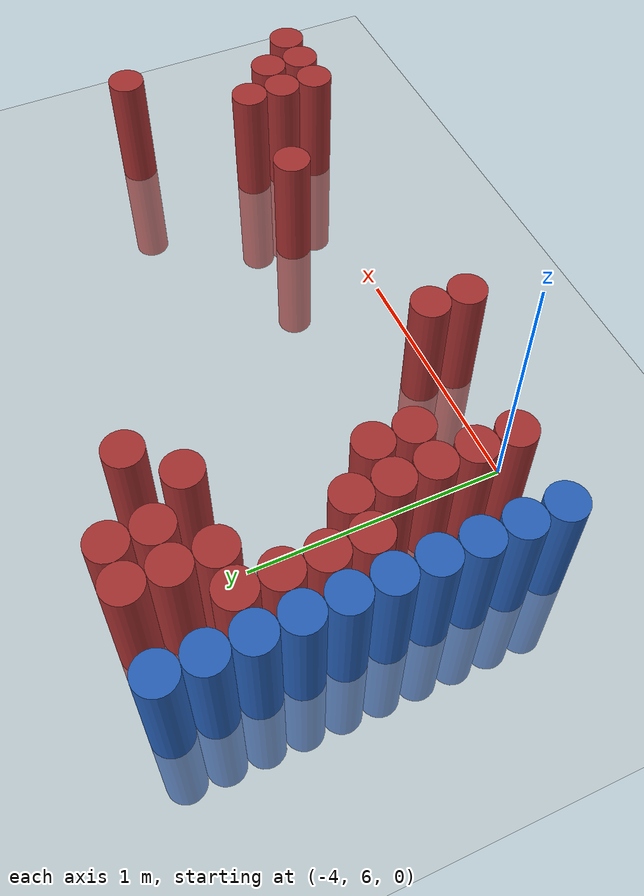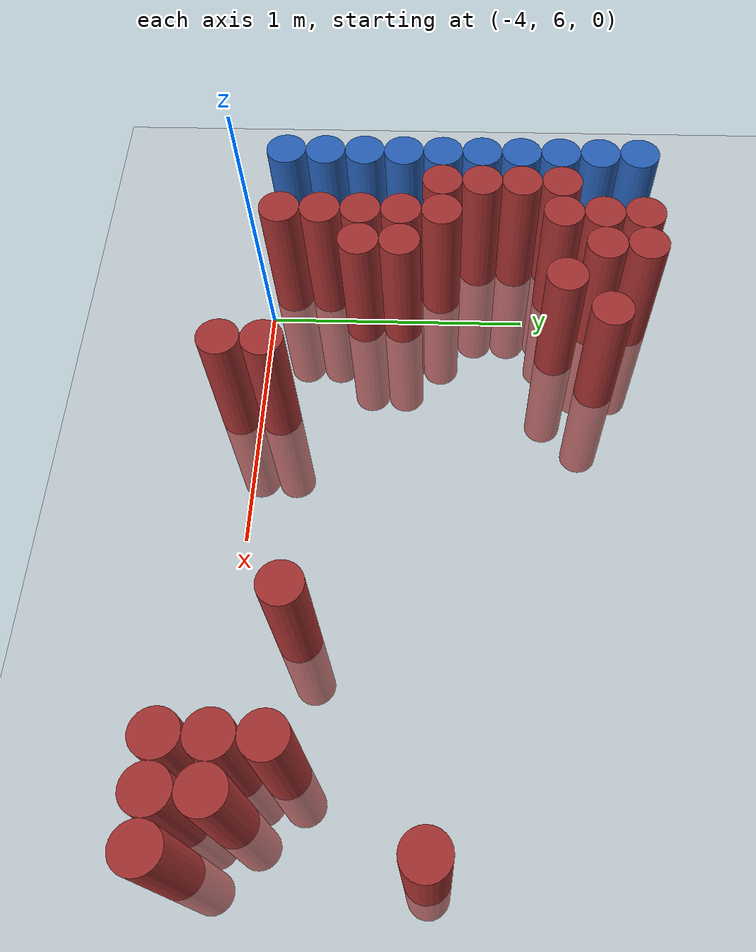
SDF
<sdf version="1.6">
 <world name="default">
  <model name="ground_plane">
   <static>1</static>
   <link name="link">
    <collision name="collision">
     <geometry><plane><normal>0 0 1</normal><size>100 100</size></plane></geometry>
     <surface><friction><ode><mu>100</mu><mu2>50</mu2></ode></friction></surface>
    </collision>
    <visual name="visual">
     <cast_shadows>0</cast_shadows>
     <geometry><plane><normal>0 0 1</normal><size>100 100</size></plane></geometry>
     <material>
      <script><uri>file://media/materials/scripts/gazebo.material</uri><name>Gazebo/Grey</name></script>
     </material>
    </visual>
   </link>
  </model>
  <model name="unit_cylinder_102">
   <static>1</static>
   <pose>-4.425000 6.075000 0.000000 0.000000 0.000000 0.000000</pose>
   <link name="link">
    <inertial>
     <mass>1</mass>
     <inertia><ixx>0.145833</ixx><ixy>0</ixy><ixz>0</ixz><iyy>0.145833</iyy><iyz>0</iyz><izz>0.125</izz></inertia>
    </inertial>
    <collision name="collision">
     <geometry><cylinder><radius>0.075000</radius><length>1</length></cylinder></geometry>
    </collision>
    <visual name="visual">
     <geometry><cylinder><radius>0.075000</radius><length>1</length></cylinder></geometry>
     <material>
      <ambient>0.152000 0.379000 0.720000 1</ambient>
      <diffuse>0.152000 0.379000 0.720000 1</diffuse>
     </material>
     <material>
      <script><name>Gazebo/Grey</name><uri>file://media/materials/scripts/gazebo.material</uri></script>
     </material>
    </visual>
    <sensor name="sensor_contact" type="contact"><contact><collision>collision</collision></contact></sensor>
   </link>
   <plugin filename="gz-sim-touchplugin-system" name="gz::sim::systems::TouchPlugin">
    <target>robot</target>
    <namespace>robot</namespace>
    <time>0.001</time>
    <enabled>true</enabled>
   </plugin>
  </model>
  <model name="unit_cylinder_103">
   <static>1</static>
   <pose>-4.425000 6.225000 0.000000 0.000000 0.000000 0.000000</pose>
   <link name="link">
    <inertial>
     <mass>1</mass>
     <inertia><ixx>0.145833</ixx><ixy>0</ixy><ixz>0</ixz><iyy>0.145833</iyy><iyz>0</iyz><izz>0.125</izz></inertia>
    </inertial>
    <collision name="collision">
     <geometry><cylinder><radius>0.075000</radius><length>1</length></cylinder></geometry>
    </collision>
    <visual name="visual">
     <geometry><cylinder><radius>0.075000</radius><length>1</length></cylinder></geometry>
     <material>
      <ambient>0.152000 0.379000 0.720000 1</ambient>
      <diffuse>0.152000 0.379000 0.720000 1</diffuse>
     </material>
     <material>
      <script><name>Gazebo/Grey</name><uri>file://media/materials/scripts/gazebo.material</uri></script>
     </material>
    </visual>
    <sensor name="sensor_contact" type="contact"><contact><collision>collision</collision></contact></sensor>
   </link>
   <plugin filename="gz-sim-touchplugin-system" name="gz::sim::systems::TouchPlugin">
    <target>robot</target>
    <namespace>robot</namespace>
    <time>0.001</time>
    <enabled>true</enabled>
   </plugin>
  </model>
  <model name="unit_cylinder_104">
   <static>1</static>
   <pose>-4.425000 6.375000 0.000000 0.000000 0.000000 0.000000</pose>
   <link name="link">
    <inertial>
     <mass>1</mass>
     <inertia><ixx>0.145833</ixx><ixy>0</ixy><ixz>0</ixz><iyy>0.145833</iyy><iyz>0</iyz><izz>0.125</izz></inertia>
    </inertial>
    <collision name="collision">
     <geometry><cylinder><radius>0.075000</radius><length>1</length></cylinder></geometry>
    </collision>
    <visual name="visual">
     <geometry><cylinder><radius>0.075000</radius><length>1</length></cylinder></geometry>
     <material>
      <ambient>0.152000 0.379000 0.720000 1</ambient>
      <diffuse>0.152000 0.379000 0.720000 1</diffuse>
     </material>
     <material>
      <script><name>Gazebo/Grey</name><uri>file://media/materials/scripts/gazebo.material</uri></script>
     </material>
    </visual>
    <sensor name="sensor_contact" type="contact"><contact><collision>collision</collision></contact></sensor>
   </link>
   <plugin filename="gz-sim-touchplugin-system" name="gz::sim::systems::TouchPlugin">
    <target>robot</target>
    <namespace>robot</namespace>
    <time>0.001</time>
    <enabled>true</enabled>
   </plugin>
  </model>
  <model name="unit_cylinder_105">
   <static>1</static>
   <pose>-4.425000 6.525000 0.000000 0.000000 0.000000 0.000000</pose>
   <link name="link">
    <inertial>
     <mass>1</mass>
     <inertia><ixx>0.145833</ixx><ixy>0</ixy><ixz>0</ixz><iyy>0.145833</iyy><iyz>0</iyz><izz>0.125</izz></inertia>
    </inertial>
    <collision name="collision">
     <geometry><cylinder><radius>0.075000</radius><length>1</length></cylinder></geometry>
    </collision>
    <visual name="visual">
     <geometry><cylinder><radius>0.075000</radius><length>1</length></cylinder></geometry>
     <material>
      <ambient>0.152000 0.379000 0.720000 1</ambient>
      <diffuse>0.152000 0.379000 0.720000 1</diffuse>
     </material>
     <material>
      <script><name>Gazebo/Grey</name><uri>file://media/materials/scripts/gazebo.material</uri></script>
     </material>
    </visual>
    <sensor name="sensor_contact" type="contact"><contact><collision>collision</collision></contact></sensor>
   </link>
   <plugin filename="gz-sim-touchplugin-system" name="gz::sim::systems::TouchPlugin">
    <target>robot</target>
    <namespace>robot</namespace>
    <time>0.001</time>
    <enabled>true</enabled>
   </plugin>
  </model>
  <model name="unit_cylinder_106">
   <static>1</static>
   <pose>-4.425000 6.675000 0.000000 0.000000 0.000000 0.000000</pose>
   <link name="link">
    <inertial>
     <mass>1</mass>
     <inertia><ixx>0.145833</ixx><ixy>0</ixy><ixz>0</ixz><iyy>0.145833</iyy><iyz>0</iyz><izz>0.125</izz></inertia>
    </inertial>
    <collision name="collision">
     <geometry><cylinder><radius>0.075000</radius><length>1</length></cylinder></geometry>
    </collision>
    <visual name="visual">
     <geometry><cylinder><radius>0.075000</radius><length>1</length></cylinder></geometry>
     <material>
      <ambient>0.152000 0.379000 0.720000 1</ambient>
      <diffuse>0.152000 0.379000 0.720000 1</diffuse>
     </material>
     <material>
      <script><name>Gazebo/Grey</name><uri>file://media/materials/scripts/gazebo.material</uri></script>
     </material>
    </visual>
    <sensor name="sensor_contact" type="contact"><contact><collision>collision</collision></contact></sensor>
   </link>
   <plugin filename="gz-sim-touchplugin-system" name="gz::sim::systems::TouchPlugin">
    <target>robot</target>
    <namespace>robot</namespace>
    <time>0.001</time>
    <enabled>true</enabled>
   </plugin>
  </model>
  <model name="unit_cylinder_107">
   <static>1</static>
   <pose>-4.425000 6.825000 0.000000 0.000000 0.000000 0.000000</pose>
   <link name="link">
    <inertial>
     <mass>1</mass>
     <inertia><ixx>0.145833</ixx><ixy>0</ixy><ixz>0</ixz><iyy>0.145833</iyy><iyz>0</iyz><izz>0.125</izz></inertia>
    </inertial>
    <collision name="collision">
     <geometry><cylinder><radius>0.075000</radius><length>1</length></cylinder></geometry>
    </collision>
    <visual name="visual">
     <geometry><cylinder><radius>0.075000</radius><length>1</length></cylinder></geometry>
     <material>
      <ambient>0.152000 0.379000 0.720000 1</ambient>
      <diffuse>0.152000 0.379000 0.720000 1</diffuse>
     </material>
     <material>
      <script><name>Gazebo/Grey</name><uri>file://media/materials/scripts/gazebo.material</uri></script>
     </material>
    </visual>
    <sensor name="sensor_contact" type="contact"><contact><collision>collision</collision></contact></sensor>
   </link>
   <plugin filename="gz-sim-touchplugin-system" name="gz::sim::systems::TouchPlugin">
    <target>robot</target>
    <namespace>robot</namespace>
    <time>0.001</time>
    <enabled>true</enabled>
   </plugin>
  </model>
  <model name="unit_cylinder_108">
   <static>1</static>
   <pose>-4.425000 6.975000 0.000000 0.000000 0.000000 0.000000</pose>
   <link name="link">
    <inertial>
     <mass>1</mass>
     <inertia><ixx>0.145833</ixx><ixy>0</ixy><ixz>0</ixz><iyy>0.145833</iyy><iyz>0</iyz><izz>0.125</izz></inertia>
    </inertial>
    <collision name="collision">
     <geometry><cylinder><radius>0.075000</radius><length>1</length></cylinder></geometry>
    </collision>
    <visual name="visual">
     <geometry><cylinder><radius>0.075000</radius><length>1</length></cylinder></geometry>
     <material>
      <ambient>0.152000 0.379000 0.720000 1</ambient>
      <diffuse>0.152000 0.379000 0.720000 1</diffuse>
     </material>
     <material>
      <script><name>Gazebo/Grey</name><uri>file://media/materials/scripts/gazebo.material</uri></script>
     </material>
    </visual>
    <sensor name="sensor_contact" type="contact"><contact><collision>collision</collision></contact></sensor>
   </link>
   <plugin filename="gz-sim-touchplugin-system" name="gz::sim::systems::TouchPlugin">
    <target>robot</target>
    <namespace>robot</namespace>
    <time>0.001</time>
    <enabled>true</enabled>
   </plugin>
  </model>
  <model name="unit_cylinder_109">
   <static>1</static>
   <pose>-4.425000 7.125000 0.000000 0.000000 0.000000 0.000000</pose>
   <link name="link">
    <inertial>
     <mass>1</mass>
     <inertia><ixx>0.145833</ixx><ixy>0</ixy><ixz>0</ixz><iyy>0.145833</iyy><iyz>0</iyz><izz>0.125</izz></inertia>
    </inertial>
    <collision name="collision">
     <geometry><cylinder><radius>0.075000</radius><length>1</length></cylinder></geometry>
    </collision>
    <visual name="visual">
     <geometry><cylinder><radius>0.075000</radius><length>1</length></cylinder></geometry>
     <material>
      <ambient>0.152000 0.379000 0.720000 1</ambient>
      <diffuse>0.152000 0.379000 0.720000 1</diffuse>
     </material>
     <material>
      <script><name>Gazebo/Grey</name><uri>file://media/materials/scripts/gazebo.material</uri></script>
     </material>
    </visual>
    <sensor name="sensor_contact" type="contact"><contact><collision>collision</collision></contact></sensor>
   </link>
   <plugin filename="gz-sim-touchplugin-system" name="gz::sim::systems::TouchPlugin">
    <target>robot</target>
    <namespace>robot</namespace>
    <time>0.001</time>
    <enabled>true</enabled>
   </plugin>
  </model>
  <model name="unit_cylinder_110">
   <static>1</static>
   <pose>-4.425000 7.275000 0.000000 0.000000 0.000000 0.000000</pose>
   <link name="link">
    <inertial>
     <mass>1</mass>
     <inertia><ixx>0.145833</ixx><ixy>0</ixy><ixz>0</ixz><iyy>0.145833</iyy><iyz>0</iyz><izz>0.125</izz></inertia>
    </inertial>
    <collision name="collision">
     <geometry><cylinder><radius>0.075000</radius><length>1</length></cylinder></geometry>
    </collision>
    <visual name="visual">
     <geometry><cylinder><radius>0.075000</radius><length>1</length></cylinder></geometry>
     <material>
      <ambient>0.152000 0.379000 0.720000 1</ambient>
      <diffuse>0.152000 0.379000 0.720000 1</diffuse>
     </material>
     <material>
      <script><name>Gazebo/Grey</name><uri>file://media/materials/scripts/gazebo.material</uri></script>
     </material>
    </visual>
    <sensor name="sensor_contact" type="contact"><contact><collision>collision</collision></contact></sensor>
   </link>
   <plugin filename="gz-sim-touchplugin-system" name="gz::sim::systems::TouchPlugin">
    <target>robot</target>
    <namespace>robot</namespace>
    <time>0.001</time>
    <enabled>true</enabled>
   </plugin>
  </model>
  <model name="unit_cylinder_111">
   <static>1</static>
   <pose>-4.425000 7.425000 0.000000 0.000000 0.000000 0.000000</pose>
   <link name="link">
    <inertial>
     <mass>1</mass>
     <inertia><ixx>0.145833</ixx><ixy>0</ixy><ixz>0</ixz><iyy>0.145833</iyy><iyz>0</iyz><izz>0.125</izz></inertia>
    </inertial>
    <collision name="collision">
     <geometry><cylinder><radius>0.075000</radius><length>1</length></cylinder></geometry>
    </collision>
    <visual name="visual">
     <geometry><cylinder><radius>0.075000</radius><length>1</length></cylinder></geometry>
     <material>
      <ambient>0.152000 0.379000 0.720000 1</ambient>
      <diffuse>0.152000 0.379000 0.720000 1</diffuse>
     </material>
     <material>
      <script><name>Gazebo/Grey</name><uri>file://media/materials/scripts/gazebo.material</uri></script>
     </material>
    </visual>
    <sensor name="sensor_contact" type="contact"><contact><collision>collision</collision></contact></sensor>
   </link>
   <plugin filename="gz-sim-touchplugin-system" name="gz::sim::systems::TouchPlugin">
    <target>robot</target>
    <namespace>robot</namespace>
    <time>0.001</time>
    <enabled>true</enabled>
   </plugin>
  </model>
  <model name="unit_cylinder_127">
   <static>1</static>
   <pose>-4.275000 6.675000 0.000000 0.000000 0.000000 0.000000</pose>
   <link name="link">
    <inertial>
     <mass>1</mass>
     <inertia><ixx>0.145833</ixx><ixy>0</ixy><ixz>0</ixz><iyy>0.145833</iyy><iyz>0</iyz><izz>0.125</izz></inertia>
    </inertial>
    <collision name="collision">
     <geometry><cylinder><radius>0.075000</radius><length>1</length></cylinder></geometry>
    </collision>
    <visual name="visual">
     <geometry><cylinder><radius>0.075000</radius><length>1</length></cylinder></geometry>
     <material>
      <ambient>0.648000 0.192000 0.192000 1</ambient>
      <diffuse>0.648000 0.192000 0.192000 1</diffuse>
     </material>
     <material>
      <script><name>Gazebo/Grey</name><uri>file://media/materials/scripts/gazebo.material</uri></script>
     </material>
    </visual>
    <sensor name="sensor_contact" type="contact"><contact><collision>collision</collision></contact></sensor>
   </link>
   <plugin filename="gz-sim-touchplugin-system" name="gz::sim::systems::TouchPlugin">
    <target>robot</target>
    <namespace>robot</namespace>
    <time>0.001</time>
    <enabled>true</enabled>
   </plugin>
  </model>
  <model name="unit_cylinder_128">
   <static>1</static>
   <pose>-4.275000 6.825000 0.000000 0.000000 0.000000 0.000000</pose>
   <link name="link">
    <inertial>
     <mass>1</mass>
     <inertia><ixx>0.145833</ixx><ixy>0</ixy><ixz>0</ixz><iyy>0.145833</iyy><iyz>0</iyz><izz>0.125</izz></inertia>
    </inertial>
    <collision name="collision">
     <geometry><cylinder><radius>0.075000</radius><length>1</length></cylinder></geometry>
    </collision>
    <visual name="visual">
     <geometry><cylinder><radius>0.075000</radius><length>1</length></cylinder></geometry>
     <material>
      <ambient>0.648000 0.192000 0.192000 1</ambient>
      <diffuse>0.648000 0.192000 0.192000 1</diffuse>
     </material>
     <material>
      <script><name>Gazebo/Grey</name><uri>file://media/materials/scripts/gazebo.material</uri></script>
     </material>
    </visual>
    <sensor name="sensor_contact" type="contact"><contact><collision>collision</collision></contact></sensor>
   </link>
   <plugin filename="gz-sim-touchplugin-system" name="gz::sim::systems::TouchPlugin">
    <target>robot</target>
    <namespace>robot</namespace>
    <time>0.001</time>
    <enabled>true</enabled>
   </plugin>
  </model>
  <model name="unit_cylinder_129">
   <static>1</static>
   <pose>-4.275000 6.975000 0.000000 0.000000 0.000000 0.000000</pose>
   <link name="link">
    <inertial>
     <mass>1</mass>
     <inertia><ixx>0.145833</ixx><ixy>0</ixy><ixz>0</ixz><iyy>0.145833</iyy><iyz>0</iyz><izz>0.125</izz></inertia>
    </inertial>
    <collision name="collision">
     <geometry><cylinder><radius>0.075000</radius><length>1</length></cylinder></geometry>
    </collision>
    <visual name="visual">
     <geometry><cylinder><radius>0.075000</radius><length>1</length></cylinder></geometry>
     <material>
      <ambient>0.648000 0.192000 0.192000 1</ambient>
      <diffuse>0.648000 0.192000 0.192000 1</diffuse>
     </material>
     <material>
      <script><name>Gazebo/Grey</name><uri>file://media/materials/scripts/gazebo.material</uri></script>
     </material>
    </visual>
    <sensor name="sensor_contact" type="contact"><contact><collision>collision</collision></contact></sensor>
   </link>
   <plugin filename="gz-sim-touchplugin-system" name="gz::sim::systems::TouchPlugin">
    <target>robot</target>
    <namespace>robot</namespace>
    <time>0.001</time>
    <enabled>true</enabled>
   </plugin>
  </model>
  <model name="unit_cylinder_130">
   <static>1</static>
   <pose>-4.275000 7.125000 0.000000 0.000000 0.000000 0.000000</pose>
   <link name="link">
    <inertial>
     <mass>1</mass>
     <inertia><ixx>0.145833</ixx><ixy>0</ixy><ixz>0</ixz><iyy>0.145833</iyy><iyz>0</iyz><izz>0.125</izz></inertia>
    </inertial>
    <collision name="collision">
     <geometry><cylinder><radius>0.075000</radius><length>1</length></cylinder></geometry>
    </collision>
    <visual name="visual">
     <geometry><cylinder><radius>0.075000</radius><length>1</length></cylinder></geometry>
     <material>
      <ambient>0.648000 0.192000 0.192000 1</ambient>
      <diffuse>0.648000 0.192000 0.192000 1</diffuse>
     </material>
     <material>
      <script><name>Gazebo/Grey</name><uri>file://media/materials/scripts/gazebo.material</uri></script>
     </material>
    </visual>
    <sensor name="sensor_contact" type="contact"><contact><collision>collision</collision></contact></sensor>
   </link>
   <plugin filename="gz-sim-touchplugin-system" name="gz::sim::systems::TouchPlugin">
    <target>robot</target>
    <namespace>robot</namespace>
    <time>0.001</time>
    <enabled>true</enabled>
   </plugin>
  </model>
  <model name="unit_cylinder_141">
   <static>1</static>
   <pose>-4.125000 6.075000 0.000000 0.000000 0.000000 0.000000</pose>
   <link name="link">
    <inertial>
     <mass>1</mass>
     <inertia><ixx>0.145833</ixx><ixy>0</ixy><ixz>0</ixz><iyy>0.145833</iyy><iyz>0</iyz><izz>0.125</izz></inertia>
    </inertial>
    <collision name="collision">
     <geometry><cylinder><radius>0.075000</radius><length>1</length></cylinder></geometry>
    </collision>
    <visual name="visual">
     <geometry><cylinder><radius>0.075000</radius><length>1</length></cylinder></geometry>
     <material>
      <ambient>0.648000 0.192000 0.192000 1</ambient>
      <diffuse>0.648000 0.192000 0.192000 1</diffuse>
     </material>
     <material>
      <script><name>Gazebo/Grey</name><uri>file://media/materials/scripts/gazebo.material</uri></script>
     </material>
    </visual>
    <sensor name="sensor_contact" type="contact"><contact><collision>collision</collision></contact></sensor>
   </link>
   <plugin filename="gz-sim-touchplugin-system" name="gz::sim::systems::TouchPlugin">
    <target>robot</target>
    <namespace>robot</namespace>
    <time>0.001</time>
    <enabled>true</enabled>
   </plugin>
  </model>
  <model name="unit_cylinder_142">
   <static>1</static>
   <pose>-4.125000 6.225000 0.000000 0.000000 0.000000 0.000000</pose>
   <link name="link">
    <inertial>
     <mass>1</mass>
     <inertia><ixx>0.145833</ixx><ixy>0</ixy><ixz>0</ixz><iyy>0.145833</iyy><iyz>0</iyz><izz>0.125</izz></inertia>
    </inertial>
    <collision name="collision">
     <geometry><cylinder><radius>0.075000</radius><length>1</length></cylinder></geometry>
    </collision>
    <visual name="visual">
     <geometry><cylinder><radius>0.075000</radius><length>1</length></cylinder></geometry>
     <material>
      <ambient>0.648000 0.192000 0.192000 1</ambient>
      <diffuse>0.648000 0.192000 0.192000 1</diffuse>
     </material>
     <material>
      <script><name>Gazebo/Grey</name><uri>file://media/materials/scripts/gazebo.material</uri></script>
     </material>
    </visual>
    <sensor name="sensor_contact" type="contact"><contact><collision>collision</collision></contact></sensor>
   </link>
   <plugin filename="gz-sim-touchplugin-system" name="gz::sim::systems::TouchPlugin">
    <target>robot</target>
    <namespace>robot</namespace>
    <time>0.001</time>
    <enabled>true</enabled>
   </plugin>
  </model>
  <model name="unit_cylinder_143">
   <static>1</static>
   <pose>-4.125000 6.375000 0.000000 0.000000 0.000000 0.000000</pose>
   <link name="link">
    <inertial>
     <mass>1</mass>
     <inertia><ixx>0.145833</ixx><ixy>0</ixy><ixz>0</ixz><iyy>0.145833</iyy><iyz>0</iyz><izz>0.125</izz></inertia>
    </inertial>
    <collision name="collision">
     <geometry><cylinder><radius>0.075000</radius><length>1</length></cylinder></geometry>
    </collision>
    <visual name="visual">
     <geometry><cylinder><radius>0.075000</radius><length>1</length></cylinder></geometry>
     <material>
      <ambient>0.648000 0.192000 0.192000 1</ambient>
      <diffuse>0.648000 0.192000 0.192000 1</diffuse>
     </material>
     <material>
      <script><name>Gazebo/Grey</name><uri>file://media/materials/scripts/gazebo.material</uri></script>
     </material>
    </visual>
    <sensor name="sensor_contact" type="contact"><contact><collision>collision</collision></contact></sensor>
   </link>
   <plugin filename="gz-sim-touchplugin-system" name="gz::sim::systems::TouchPlugin">
    <target>robot</target>
    <namespace>robot</namespace>
    <time>0.001</time>
    <enabled>true</enabled>
   </plugin>
  </model>
  <model name="unit_cylinder_144">
   <static>1</static>
   <pose>-4.125000 6.525000 0.000000 0.000000 0.000000 0.000000</pose>
   <link name="link">
    <inertial>
     <mass>1</mass>
     <inertia><ixx>0.145833</ixx><ixy>0</ixy><ixz>0</ixz><iyy>0.145833</iyy><iyz>0</iyz><izz>0.125</izz></inertia>
    </inertial>
    <collision name="collision">
     <geometry><cylinder><radius>0.075000</radius><length>1</length></cylinder></geometry>
    </collision>
    <visual name="visual">
     <geometry><cylinder><radius>0.075000</radius><length>1</length></cylinder></geometry>
     <material>
      <ambient>0.648000 0.192000 0.192000 1</ambient>
      <diffuse>0.648000 0.192000 0.192000 1</diffuse>
     </material>
     <material>
      <script><name>Gazebo/Grey</name><uri>file://media/materials/scripts/gazebo.material</uri></script>
     </material>
    </visual>
    <sensor name="sensor_contact" type="contact"><contact><collision>collision</collision></contact></sensor>
   </link>
   <plugin filename="gz-sim-touchplugin-system" name="gz::sim::systems::TouchPlugin">
    <target>robot</target>
    <namespace>robot</namespace>
    <time>0.001</time>
    <enabled>true</enabled>
   </plugin>
  </model>
  <model name="unit_cylinder_145">
   <static>1</static>
   <pose>-4.125000 6.675000 0.000000 0.000000 0.000000 0.000000</pose>
   <link name="link">
    <inertial>
     <mass>1</mass>
     <inertia><ixx>0.145833</ixx><ixy>0</ixy><ixz>0</ixz><iyy>0.145833</iyy><iyz>0</iyz><izz>0.125</izz></inertia>
    </inertial>
    <collision name="collision">
     <geometry><cylinder><radius>0.075000</radius><length>1</length></cylinder></geometry>
    </collision>
    <visual name="visual">
     <geometry><cylinder><radius>0.075000</radius><length>1</length></cylinder></geometry>
     <material>
      <ambient>0.648000 0.192000 0.192000 1</ambient>
      <diffuse>0.648000 0.192000 0.192000 1</diffuse>
     </material>
     <material>
      <script><name>Gazebo/Grey</name><uri>file://media/materials/scripts/gazebo.material</uri></script>
     </material>
    </visual>
    <sensor name="sensor_contact" type="contact"><contact><collision>collision</collision></contact></sensor>
   </link>
   <plugin filename="gz-sim-touchplugin-system" name="gz::sim::systems::TouchPlugin">
    <target>robot</target>
    <namespace>robot</namespace>
    <time>0.001</time>
    <enabled>true</enabled>
   </plugin>
  </model>
  <model name="unit_cylinder_146">
   <static>1</static>
   <pose>-4.125000 7.125000 0.000000 0.000000 0.000000 0.000000</pose>
   <link name="link">
    <inertial>
     <mass>1</mass>
     <inertia><ixx>0.145833</ixx><ixy>0</ixy><ixz>0</ixz><iyy>0.145833</iyy><iyz>0</iyz><izz>0.125</izz></inertia>
    </inertial>
    <collision name="collision">
     <geometry><cylinder><radius>0.075000</radius><length>1</length></cylinder></geometry>
    </collision>
    <visual name="visual">
     <geometry><cylinder><radius>0.075000</radius><length>1</length></cylinder></geometry>
     <material>
      <ambient>0.648000 0.192000 0.192000 1</ambient>
      <diffuse>0.648000 0.192000 0.192000 1</diffuse>
     </material>
     <material>
      <script><name>Gazebo/Grey</name><uri>file://media/materials/scripts/gazebo.material</uri></script>
     </material>
    </visual>
    <sensor name="sensor_contact" type="contact"><contact><collision>collision</collision></contact></sensor>
   </link>
   <plugin filename="gz-sim-touchplugin-system" name="gz::sim::systems::TouchPlugin">
    <target>robot</target>
    <namespace>robot</namespace>
    <time>0.001</time>
    <enabled>true</enabled>
   </plugin>
  </model>
  <model name="unit_cylinder_147">
   <static>1</static>
   <pose>-4.125000 7.275000 0.000000 0.000000 0.000000 0.000000</pose>
   <link name="link">
    <inertial>
     <mass>1</mass>
     <inertia><ixx>0.145833</ixx><ixy>0</ixy><ixz>0</ixz><iyy>0.145833</iyy><iyz>0</iyz><izz>0.125</izz></inertia>
    </inertial>
    <collision name="collision">
     <geometry><cylinder><radius>0.075000</radius><length>1</length></cylinder></geometry>
    </collision>
    <visual name="visual">
     <geometry><cylinder><radius>0.075000</radius><length>1</length></cylinder></geometry>
     <material>
      <ambient>0.648000 0.192000 0.192000 1</ambient>
      <diffuse>0.648000 0.192000 0.192000 1</diffuse>
     </material>
     <material>
      <script><name>Gazebo/Grey</name><uri>file://media/materials/scripts/gazebo.material</uri></script>
     </material>
    </visual>
    <sensor name="sensor_contact" type="contact"><contact><collision>collision</collision></contact></sensor>
   </link>
   <plugin filename="gz-sim-touchplugin-system" name="gz::sim::systems::TouchPlugin">
    <target>robot</target>
    <namespace>robot</namespace>
    <time>0.001</time>
    <enabled>true</enabled>
   </plugin>
  </model>
  <model name="unit_cylinder_148">
   <static>1</static>
   <pose>-4.125000 7.425000 0.000000 0.000000 0.000000 0.000000</pose>
   <link name="link">
    <inertial>
     <mass>1</mass>
     <inertia><ixx>0.145833</ixx><ixy>0</ixy><ixz>0</ixz><iyy>0.145833</iyy><iyz>0</iyz><izz>0.125</izz></inertia>
    </inertial>
    <collision name="collision">
     <geometry><cylinder><radius>0.075000</radius><length>1</length></cylinder></geometry>
    </collision>
    <visual name="visual">
     <geometry><cylinder><radius>0.075000</radius><length>1</length></cylinder></geometry>
     <material>
      <ambient>0.648000 0.192000 0.192000 1</ambient>
      <diffuse>0.648000 0.192000 0.192000 1</diffuse>
     </material>
     <material>
      <script><name>Gazebo/Grey</name><uri>file://media/materials/scripts/gazebo.material</uri></script>
     </material>
    </visual>
    <sensor name="sensor_contact" type="contact"><contact><collision>collision</collision></contact></sensor>
   </link>
   <plugin filename="gz-sim-touchplugin-system" name="gz::sim::systems::TouchPlugin">
    <target>robot</target>
    <namespace>robot</namespace>
    <time>0.001</time>
    <enabled>true</enabled>
   </plugin>
  </model>
  <model name="unit_cylinder_156">
   <static>1</static>
   <pose>-3.975000 6.375000 0.000000 0.000000 0.000000 0.000000</pose>
   <link name="link">
    <inertial>
     <mass>1</mass>
     <inertia><ixx>0.145833</ixx><ixy>0</ixy><ixz>0</ixz><iyy>0.145833</iyy><iyz>0</iyz><izz>0.125</izz></inertia>
    </inertial>
    <collision name="collision">
     <geometry><cylinder><radius>0.075000</radius><length>1</length></cylinder></geometry>
    </collision>
    <visual name="visual">
     <geometry><cylinder><radius>0.075000</radius><length>1</length></cylinder></geometry>
     <material>
      <ambient>0.648000 0.192000 0.192000 1</ambient>
      <diffuse>0.648000 0.192000 0.192000 1</diffuse>
     </material>
     <material>
      <script><name>Gazebo/Grey</name><uri>file://media/materials/scripts/gazebo.material</uri></script>
     </material>
    </visual>
    <sensor name="sensor_contact" type="contact"><contact><collision>collision</collision></contact></sensor>
   </link>
   <plugin filename="gz-sim-touchplugin-system" name="gz::sim::systems::TouchPlugin">
    <target>robot</target>
    <namespace>robot</namespace>
    <time>0.001</time>
    <enabled>true</enabled>
   </plugin>
  </model>
  <model name="unit_cylinder_157">
   <static>1</static>
   <pose>-3.975000 6.525000 0.000000 0.000000 0.000000 0.000000</pose>
   <link name="link">
    <inertial>
     <mass>1</mass>
     <inertia><ixx>0.145833</ixx><ixy>0</ixy><ixz>0</ixz><iyy>0.145833</iyy><iyz>0</iyz><izz>0.125</izz></inertia>
    </inertial>
    <collision name="collision">
     <geometry><cylinder><radius>0.075000</radius><length>1</length></cylinder></geometry>
    </collision>
    <visual name="visual">
     <geometry><cylinder><radius>0.075000</radius><length>1</length></cylinder></geometry>
     <material>
      <ambient>0.648000 0.192000 0.192000 1</ambient>
      <diffuse>0.648000 0.192000 0.192000 1</diffuse>
     </material>
     <material>
      <script><name>Gazebo/Grey</name><uri>file://media/materials/scripts/gazebo.material</uri></script>
     </material>
    </visual>
    <sensor name="sensor_contact" type="contact"><contact><collision>collision</collision></contact></sensor>
   </link>
   <plugin filename="gz-sim-touchplugin-system" name="gz::sim::systems::TouchPlugin">
    <target>robot</target>
    <namespace>robot</namespace>
    <time>0.001</time>
    <enabled>true</enabled>
   </plugin>
  </model>
  <model name="unit_cylinder_158">
   <static>1</static>
   <pose>-3.975000 7.275000 0.000000 0.000000 0.000000 0.000000</pose>
   <link name="link">
    <inertial>
     <mass>1</mass>
     <inertia><ixx>0.145833</ixx><ixy>0</ixy><ixz>0</ixz><iyy>0.145833</iyy><iyz>0</iyz><izz>0.125</izz></inertia>
    </inertial>
    <collision name="collision">
     <geometry><cylinder><radius>0.075000</radius><length>1</length></cylinder></geometry>
    </collision>
    <visual name="visual">
     <geometry><cylinder><radius>0.075000</radius><length>1</length></cylinder></geometry>
     <material>
      <ambient>0.648000 0.192000 0.192000 1</ambient>
      <diffuse>0.648000 0.192000 0.192000 1</diffuse>
     </material>
     <material>
      <script><name>Gazebo/Grey</name><uri>file://media/materials/scripts/gazebo.material</uri></script>
     </material>
    </visual>
    <sensor name="sensor_contact" type="contact"><contact><collision>collision</collision></contact></sensor>
   </link>
   <plugin filename="gz-sim-touchplugin-system" name="gz::sim::systems::TouchPlugin">
    <target>robot</target>
    <namespace>robot</namespace>
    <time>0.001</time>
    <enabled>true</enabled>
   </plugin>
  </model>
  <model name="unit_cylinder_159">
   <static>1</static>
   <pose>-3.975000 7.425000 0.000000 0.000000 0.000000 0.000000</pose>
   <link name="link">
    <inertial>
     <mass>1</mass>
     <inertia><ixx>0.145833</ixx><ixy>0</ixy><ixz>0</ixz><iyy>0.145833</iyy><iyz>0</iyz><izz>0.125</izz></inertia>
    </inertial>
    <collision name="collision">
     <geometry><cylinder><radius>0.075000</radius><length>1</length></cylinder></geometry>
    </collision>
    <visual name="visual">
     <geometry><cylinder><radius>0.075000</radius><length>1</length></cylinder></geometry>
     <material>
      <ambient>0.648000 0.192000 0.192000 1</ambient>
      <diffuse>0.648000 0.192000 0.192000 1</diffuse>
     </material>
     <material>
      <script><name>Gazebo/Grey</name><uri>file://media/materials/scripts/gazebo.material</uri></script>
     </material>
    </visual>
    <sensor name="sensor_contact" type="contact"><contact><collision>collision</collision></contact></sensor>
   </link>
   <plugin filename="gz-sim-touchplugin-system" name="gz::sim::systems::TouchPlugin">
    <target>robot</target>
    <namespace>robot</namespace>
    <time>0.001</time>
    <enabled>true</enabled>
   </plugin>
  </model>
  <model name="unit_cylinder_162">
   <static>1</static>
   <pose>-3.825000 7.125000 0.000000 0.000000 0.000000 0.000000</pose>
   <link name="link">
    <inertial>
     <mass>1</mass>
     <inertia><ixx>0.145833</ixx><ixy>0</ixy><ixz>0</ixz><iyy>0.145833</iyy><iyz>0</iyz><izz>0.125</izz></inertia>
    </inertial>
    <collision name="collision">
     <geometry><cylinder><radius>0.075000</radius><length>1</length></cylinder></geometry>
    </collision>
    <visual name="visual">
     <geometry><cylinder><radius>0.075000</radius><length>1</length></cylinder></geometry>
     <material>
      <ambient>0.648000 0.192000 0.192000 1</ambient>
      <diffuse>0.648000 0.192000 0.192000 1</diffuse>
     </material>
     <material>
      <script><name>Gazebo/Grey</name><uri>file://media/materials/scripts/gazebo.material</uri></script>
     </material>
    </visual>
    <sensor name="sensor_contact" type="contact"><contact><collision>collision</collision></contact></sensor>
   </link>
   <plugin filename="gz-sim-touchplugin-system" name="gz::sim::systems::TouchPlugin">
    <target>robot</target>
    <namespace>robot</namespace>
    <time>0.001</time>
    <enabled>true</enabled>
   </plugin>
  </model>
  <model name="unit_cylinder_165">
   <static>1</static>
   <pose>-3.675000 7.275000 0.000000 0.000000 0.000000 0.000000</pose>
   <link name="link">
    <inertial>
     <mass>1</mass>
     <inertia><ixx>0.145833</ixx><ixy>0</ixy><ixz>0</ixz><iyy>0.145833</iyy><iyz>0</iyz><izz>0.125</izz></inertia>
    </inertial>
    <collision name="collision">
     <geometry><cylinder><radius>0.075000</radius><length>1</length></cylinder></geometry>
    </collision>
    <visual name="visual">
     <geometry><cylinder><radius>0.075000</radius><length>1</length></cylinder></geometry>
     <material>
      <ambient>0.648000 0.192000 0.192000 1</ambient>
      <diffuse>0.648000 0.192000 0.192000 1</diffuse>
     </material>
     <material>
      <script><name>Gazebo/Grey</name><uri>file://media/materials/scripts/gazebo.material</uri></script>
     </material>
    </visual>
    <sensor name="sensor_contact" type="contact"><contact><collision>collision</collision></contact></sensor>
   </link>
   <plugin filename="gz-sim-touchplugin-system" name="gz::sim::systems::TouchPlugin">
    <target>robot</target>
    <namespace>robot</namespace>
    <time>0.001</time>
    <enabled>true</enabled>
   </plugin>
  </model>
  <model name="unit_cylinder_169">
   <static>1</static>
   <pose>-3.525000 5.925000 0.000000 0.000000 0.000000 0.000000</pose>
   <link name="link">
    <inertial>
     <mass>1</mass>
     <inertia><ixx>0.145833</ixx><ixy>0</ixy><ixz>0</ixz><iyy>0.145833</iyy><iyz>0</iyz><izz>0.125</izz></inertia>
    </inertial>
    <collision name="collision">
     <geometry><cylinder><radius>0.075000</radius><length>1</length></cylinder></geometry>
    </collision>
    <visual name="visual">
     <geometry><cylinder><radius>0.075000</radius><length>1</length></cylinder></geometry>
     <material>
      <ambient>0.648000 0.192000 0.192000 1</ambient>
      <diffuse>0.648000 0.192000 0.192000 1</diffuse>
     </material>
     <material>
      <script><name>Gazebo/Grey</name><uri>file://media/materials/scripts/gazebo.material</uri></script>
     </material>
    </visual>
    <sensor name="sensor_contact" type="contact"><contact><collision>collision</collision></contact></sensor>
   </link>
   <plugin filename="gz-sim-touchplugin-system" name="gz::sim::systems::TouchPlugin">
    <target>robot</target>
    <namespace>robot</namespace>
    <time>0.001</time>
    <enabled>true</enabled>
   </plugin>
  </model>
  <model name="unit_cylinder_170">
   <static>1</static>
   <pose>-3.525000 6.075000 0.000000 0.000000 0.000000 0.000000</pose>
   <link name="link">
    <inertial>
     <mass>1</mass>
     <inertia><ixx>0.145833</ixx><ixy>0</ixy><ixz>0</ixz><iyy>0.145833</iyy><iyz>0</iyz><izz>0.125</izz></inertia>
    </inertial>
    <collision name="collision">
     <geometry><cylinder><radius>0.075000</radius><length>1</length></cylinder></geometry>
    </collision>
    <visual name="visual">
     <geometry><cylinder><radius>0.075000</radius><length>1</length></cylinder></geometry>
     <material>
      <ambient>0.648000 0.192000 0.192000 1</ambient>
      <diffuse>0.648000 0.192000 0.192000 1</diffuse>
     </material>
     <material>
      <script><name>Gazebo/Grey</name><uri>file://media/materials/scripts/gazebo.material</uri></script>
     </material>
    </visual>
    <sensor name="sensor_contact" type="contact"><contact><collision>collision</collision></contact></sensor>
   </link>
   <plugin filename="gz-sim-touchplugin-system" name="gz::sim::systems::TouchPlugin">
    <target>robot</target>
    <namespace>robot</namespace>
    <time>0.001</time>
    <enabled>true</enabled>
   </plugin>
  </model>
  <model name="unit_cylinder_174">
   <static>1</static>
   <pose>-2.625000 6.225000 0.000000 0.000000 0.000000 0.000000</pose>
   <link name="link">
    <inertial>
     <mass>1</mass>
     <inertia><ixx>0.145833</ixx><ixy>0</ixy><ixz>0</ixz><iyy>0.145833</iyy><iyz>0</iyz><izz>0.125</izz></inertia>
    </inertial>
    <collision name="collision">
     <geometry><cylinder><radius>0.075000</radius><length>1</length></cylinder></geometry>
    </collision>
    <visual name="visual">
     <geometry><cylinder><radius>0.075000</radius><length>1</length></cylinder></geometry>
     <material>
      <ambient>0.648000 0.192000 0.192000 1</ambient>
      <diffuse>0.648000 0.192000 0.192000 1</diffuse>
     </material>
     <material>
      <script><name>Gazebo/Grey</name><uri>file://media/materials/scripts/gazebo.material</uri></script>
     </material>
    </visual>
    <sensor name="sensor_contact" type="contact"><contact><collision>collision</collision></contact></sensor>
   </link>
   <plugin filename="gz-sim-touchplugin-system" name="gz::sim::systems::TouchPlugin">
    <target>robot</target>
    <namespace>robot</namespace>
    <time>0.001</time>
    <enabled>true</enabled>
   </plugin>
  </model>
  <model name="unit_cylinder_187">
   <static>1</static>
   <pose>-2.175000 5.925000 0.000000 0.000000 0.000000 0.000000</pose>
   <link name="link">
    <inertial>
     <mass>1</mass>
     <inertia><ixx>0.145833</ixx><ixy>0</ixy><ixz>0</ixz><iyy>0.145833</iyy><iyz>0</iyz><izz>0.125</izz></inertia>
    </inertial>
    <collision name="collision">
     <geometry><cylinder><radius>0.075000</radius><length>1</length></cylinder></geometry>
    </collision>
    <visual name="visual">
     <geometry><cylinder><radius>0.075000</radius><length>1</length></cylinder></geometry>
     <material>
      <ambient>0.648000 0.192000 0.192000 1</ambient>
      <diffuse>0.648000 0.192000 0.192000 1</diffuse>
     </material>
     <material>
      <script><name>Gazebo/Grey</name><uri>file://media/materials/scripts/gazebo.material</uri></script>
     </material>
    </visual>
    <sensor name="sensor_contact" type="contact"><contact><collision>collision</collision></contact></sensor>
   </link>
   <plugin filename="gz-sim-touchplugin-system" name="gz::sim::systems::TouchPlugin">
    <target>robot</target>
    <namespace>robot</namespace>
    <time>0.001</time>
    <enabled>true</enabled>
   </plugin>
  </model>
  <model name="unit_cylinder_188">
   <static>1</static>
   <pose>-2.175000 6.075000 0.000000 0.000000 0.000000 0.000000</pose>
   <link name="link">
    <inertial>
     <mass>1</mass>
     <inertia><ixx>0.145833</ixx><ixy>0</ixy><ixz>0</ixz><iyy>0.145833</iyy><iyz>0</iyz><izz>0.125</izz></inertia>
    </inertial>
    <collision name="collision">
     <geometry><cylinder><radius>0.075000</radius><length>1</length></cylinder></geometry>
    </collision>
    <visual name="visual">
     <geometry><cylinder><radius>0.075000</radius><length>1</length></cylinder></geometry>
     <material>
      <ambient>0.648000 0.192000 0.192000 1</ambient>
      <diffuse>0.648000 0.192000 0.192000 1</diffuse>
     </material>
     <material>
      <script><name>Gazebo/Grey</name><uri>file://media/materials/scripts/gazebo.material</uri></script>
     </material>
    </visual>
    <sensor name="sensor_contact" type="contact"><contact><collision>collision</collision></contact></sensor>
   </link>
   <plugin filename="gz-sim-touchplugin-system" name="gz::sim::systems::TouchPlugin">
    <target>robot</target>
    <namespace>robot</namespace>
    <time>0.001</time>
    <enabled>true</enabled>
   </plugin>
  </model>
  <model name="unit_cylinder_189">
   <static>1</static>
   <pose>-2.175000 6.225000 0.000000 0.000000 0.000000 0.000000</pose>
   <link name="link">
    <inertial>
     <mass>1</mass>
     <inertia><ixx>0.145833</ixx><ixy>0</ixy><ixz>0</ixz><iyy>0.145833</iyy><iyz>0</iyz><izz>0.125</izz></inertia>
    </inertial>
    <collision name="collision">
     <geometry><cylinder><radius>0.075000</radius><length>1</length></cylinder></geometry>
    </collision>
    <visual name="visual">
     <geometry><cylinder><radius>0.075000</radius><length>1</length></cylinder></geometry>
     <material>
      <ambient>0.648000 0.192000 0.192000 1</ambient>
      <diffuse>0.648000 0.192000 0.192000 1</diffuse>
     </material>
     <material>
      <script><name>Gazebo/Grey</name><uri>file://media/materials/scripts/gazebo.material</uri></script>
     </material>
    </visual>
    <sensor name="sensor_contact" type="contact"><contact><collision>collision</collision></contact></sensor>
   </link>
   <plugin filename="gz-sim-touchplugin-system" name="gz::sim::systems::TouchPlugin">
    <target>robot</target>
    <namespace>robot</namespace>
    <time>0.001</time>
    <enabled>true</enabled>
   </plugin>
  </model>
  <model name="unit_cylinder_195">
   <static>1</static>
   <pose>-2.025000 5.925000 0.000000 0.000000 0.000000 0.000000</pose>
   <link name="link">
    <inertial>
     <mass>1</mass>
     <inertia><ixx>0.145833</ixx><ixy>0</ixy><ixz>0</ixz><iyy>0.145833</iyy><iyz>0</iyz><izz>0.125</izz></inertia>
    </inertial>
    <collision name="collision">
     <geometry><cylinder><radius>0.075000</radius><length>1</length></cylinder></geometry>
    </collision>
    <visual name="visual">
     <geometry><cylinder><radius>0.075000</radius><length>1</length></cylinder></geometry>
     <material>
      <ambient>0.648000 0.192000 0.192000 1</ambient>
      <diffuse>0.648000 0.192000 0.192000 1</diffuse>
     </material>
     <material>
      <script><name>Gazebo/Grey</name><uri>file://media/materials/scripts/gazebo.material</uri></script>
     </material>
    </visual>
    <sensor name="sensor_contact" type="contact"><contact><collision>collision</collision></contact></sensor>
   </link>
   <plugin filename="gz-sim-touchplugin-system" name="gz::sim::systems::TouchPlugin">
    <target>robot</target>
    <namespace>robot</namespace>
    <time>0.001</time>
    <enabled>true</enabled>
   </plugin>
  </model>
  <model name="unit_cylinder_196">
   <static>1</static>
   <pose>-2.025000 6.075000 0.000000 0.000000 0.000000 0.000000</pose>
   <link name="link">
    <inertial>
     <mass>1</mass>
     <inertia><ixx>0.145833</ixx><ixy>0</ixy><ixz>0</ixz><iyy>0.145833</iyy><iyz>0</iyz><izz>0.125</izz></inertia>
    </inertial>
    <collision name="collision">
     <geometry><cylinder><radius>0.075000</radius><length>1</length></cylinder></geometry>
    </collision>
    <visual name="visual">
     <geometry><cylinder><radius>0.075000</radius><length>1</length></cylinder></geometry>
     <material>
      <ambient>0.648000 0.192000 0.192000 1</ambient>
      <diffuse>0.648000 0.192000 0.192000 1</diffuse>
     </material>
     <material>
      <script><name>Gazebo/Grey</name><uri>file://media/materials/scripts/gazebo.material</uri></script>
     </material>
    </visual>
    <sensor name="sensor_contact" type="contact"><contact><collision>collision</collision></contact></sensor>
   </link>
   <plugin filename="gz-sim-touchplugin-system" name="gz::sim::systems::TouchPlugin">
    <target>robot</target>
    <namespace>robot</namespace>
    <time>0.001</time>
    <enabled>true</enabled>
   </plugin>
  </model>
  <model name="unit_cylinder_204">
   <static>1</static>
   <pose>-1.875000 5.925000 0.000000 0.000000 0.000000 0.000000</pose>
   <link name="link">
    <inertial>
     <mass>1</mass>
     <inertia><ixx>0.145833</ixx><ixy>0</ixy><ixz>0</ixz><iyy>0.145833</iyy><iyz>0</iyz><izz>0.125</izz></inertia>
    </inertial>
    <collision name="collision">
     <geometry><cylinder><radius>0.075000</radius><length>1</length></cylinder></geometry>
    </collision>
    <visual name="visual">
     <geometry><cylinder><radius>0.075000</radius><length>1</length></cylinder></geometry>
     <material>
      <ambient>0.648000 0.192000 0.192000 1</ambient>
      <diffuse>0.648000 0.192000 0.192000 1</diffuse>
     </material>
     <material>
      <script><name>Gazebo/Grey</name><uri>file://media/materials/scripts/gazebo.material</uri></script>
     </material>
    </visual>
    <sensor name="sensor_contact" type="contact"><contact><collision>collision</collision></contact></sensor>
   </link>
   <plugin filename="gz-sim-touchplugin-system" name="gz::sim::systems::TouchPlugin">
    <target>robot</target>
    <namespace>robot</namespace>
    <time>0.001</time>
    <enabled>true</enabled>
   </plugin>
  </model>
  <model name="unit_cylinder_205">
   <static>1</static>
   <pose>-1.875000 6.675000 0.000000 0.000000 0.000000 0.000000</pose>
   <link name="link">
    <inertial>
     <mass>1</mass>
     <inertia><ixx>0.145833</ixx><ixy>0</ixy><ixz>0</ixz><iyy>0.145833</iyy><iyz>0</iyz><izz>0.125</izz></inertia>
    </inertial>
    <collision name="collision">
     <geometry><cylinder><radius>0.075000</radius><length>1</length></cylinder></geometry>
    </collision>
    <visual name="visual">
     <geometry><cylinder><radius>0.075000</radius><length>1</length></cylinder></geometry>
     <material>
      <ambient>0.648000 0.192000 0.192000 1</ambient>
      <diffuse>0.648000 0.192000 0.192000 1</diffuse>
     </material>
     <material>
      <script><name>Gazebo/Grey</name><uri>file://media/materials/scripts/gazebo.material</uri></script>
     </material>
    </visual>
    <sensor name="sensor_contact" type="contact"><contact><collision>collision</collision></contact></sensor>
   </link>
   <plugin filename="gz-sim-touchplugin-system" name="gz::sim::systems::TouchPlugin">
    <target>robot</target>
    <namespace>robot</namespace>
    <time>0.001</time>
    <enabled>true</enabled>
   </plugin>
  </model>
 </world>
</sdf>
